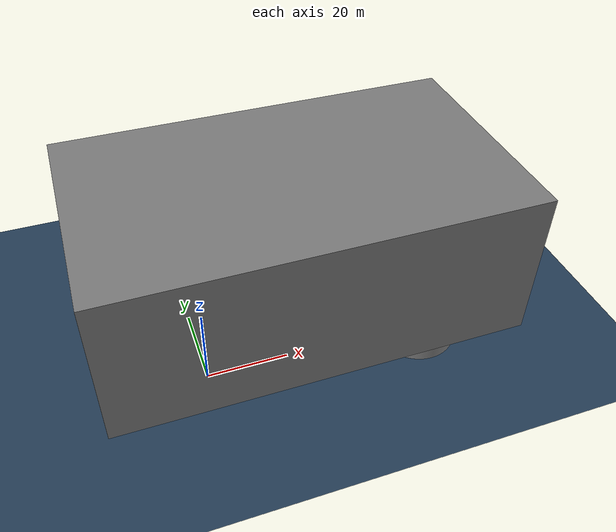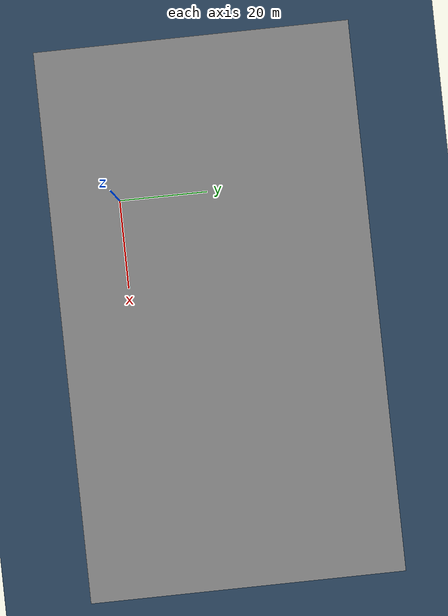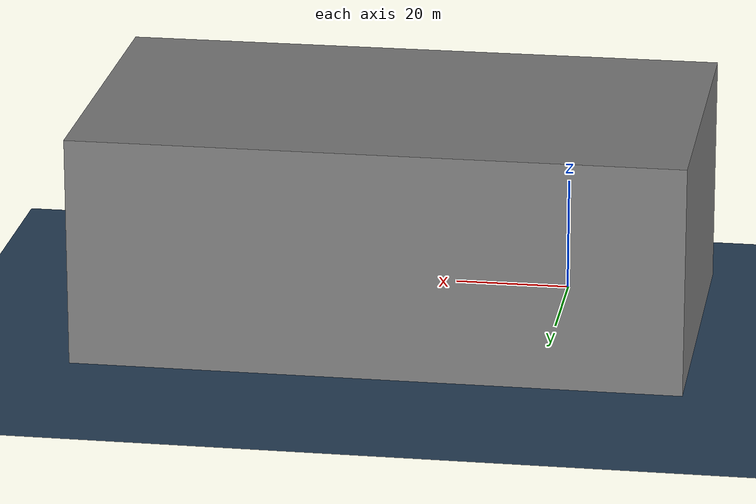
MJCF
<mujoco model="Luxo scene">
  <include file="clean-bot-1.0.xml"/>

  <statistic center="0 0 0.1" extent="0.8"/>

  <visual>
    <headlight diffuse="0.6 0.6 0.6" ambient="0.3 0.3 0.3" specular="0 0 0"/>
    <rgba haze="0.15 0.25 0.35 1"/>
    <global azimuth="120" elevation="-20"/>
  </visual>

  <asset>
    <texture type="skybox" builtin="gradient" rgb1="0.3 0.5 0.7" rgb2="0 0 0" width="512" height="3072"/>
    <texture type="2d" name="groundplane" builtin="checker" mark="edge" rgb1="0.2 0.3 0.4" rgb2="0.1 0.2 0.3"
      markrgb="0.8 0.8 0.8" width="300" height="300"/>
    <material name="groundplane" texture="groundplane" texuniform="true" texrepeat="5 5" reflectance="0.2"/>
  </asset>

  <worldbody>
    <light pos="0 0 1.5" dir="0 0 -1" directional="true"/>
    <geom name="floor" size="0 0 0.05" type="plane" material="groundplane" pos="0 0 -3"/>
  </worldbody>
</mujoco>

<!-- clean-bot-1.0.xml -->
<mujoco model="clean-bot-1">
    <compiler angle="degree" inertiafromgeom="true" meshdir="geom/" />
    <option timestep="0.0001"/>
    <asset>
        <mesh name="body" file="body.stl"/>
        <mesh name="right-hip" file="right-hip.stl"/>
        <mesh name="right-upper-leg" file="right-upper-leg.stl"/>
        <mesh name="right-lower-leg" file="right-lower-leg.stl"/>
        <mesh name="right-foot" file="right-foot.stl"/>
        <mesh name="left-hip" file="left-hip.stl"/>
        <mesh name="left-upper-leg" file="left-upper-leg.stl"/>
        <mesh name="left-lower-leg" file="left-lower-leg.stl"/>
        <mesh name="left-foot" file="left-foot.stl"/>

        <material name="gray" rgba="0.4 0.4 0.4 1"/>
        <material name="light_gray" rgba="0.8 0.8 0.8 1"/>
        <material name="black" rgba="0 0 0 1"/>
        <material  name="orange" rgba="1 0.423529 0.0392157 1"/>
        <material name="red" rgba="1 0 0 1"/>
    </asset>

    <worldbody>

        <body name="body" pos="0 0 0">
        <geom type="mesh" name="body-geom" mesh="body" />
        <joint type="free" />
            <body name="right-hip" pos="0 0 0">
            <geom type="mesh" mesh="right-hip"/>
            <joint axis="0 0 1" pos="0 0 0 "/>

            </body>
        </body>
    </worldbody>

</mujoco>
